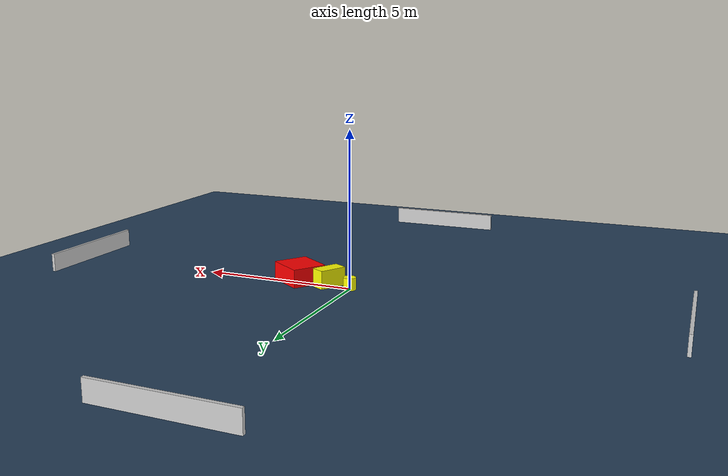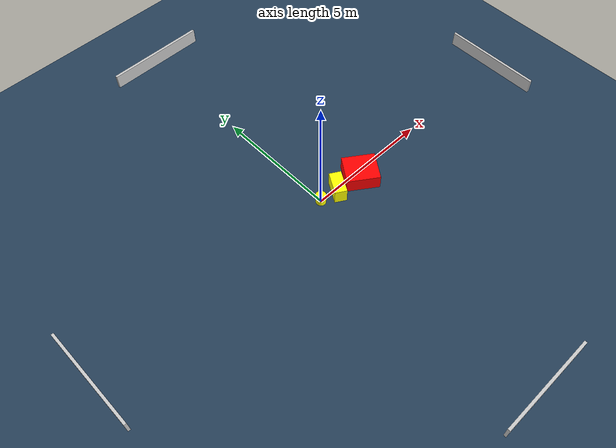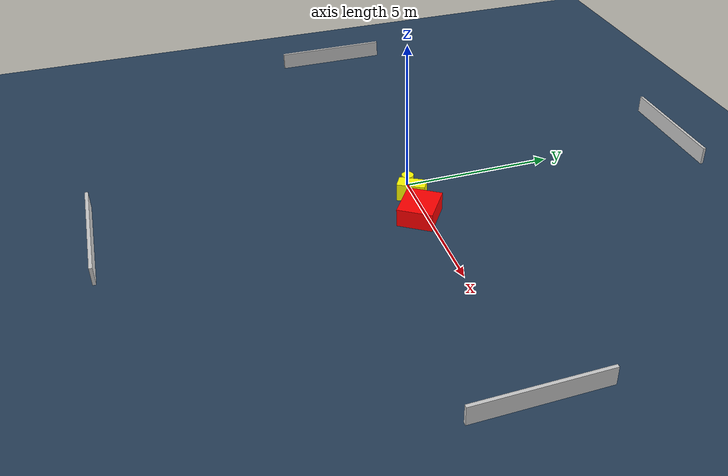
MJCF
<?xml version="1.0" ?>
<mujoco model="generated_environment">
  <option timestep="0.01" integrator="RK4" cone="elliptic"/>
  <default>
    <geom density="1"/>
  </default>
  <asset>
    <texture builtin="gradient" height="3072" name="skybox" rgb1="0.3 0.5 0.7" rgb2="0 0 0" type="skybox" width="512"/>
    <texture builtin="checker" height="300" name="groundplane" rgb1="0.2 0.3 0.4" rgb2="0.1 0.2 0.3" type="2d" width="300"/>
    <material name="groundplane" reflectance="0.2" texrepeat="5 5" texture="groundplane"/>
  </asset>
  <worldbody>
    <light dir="0 0 -1" directional="true" pos="0 0 1.5"/>
    <geom condim="3" friction="0.5 0.005 0.001" material="groundplane" name="floor" pos="0 0 0" size="0 0 0.05" type="plane"/>
    <body name="walls">
      <geom name="wall_1" condim="4" pos="-10.0 0.0 0.3" rgba="0.800000011920929 0.800000011920929 0.800000011920929 1.0" size="0.05 2.0 0.3" type="box"/>
      <geom name="wall_2" condim="4" pos="10.0 0.0 0.3" rgba="0.800000011920929 0.800000011920929 0.800000011920929 1.0" size="0.05 2.0 0.3" type="box"/>
      <geom name="wall_3" condim="4" pos="0.0 -10.0 0.3" rgba="0.800000011920929 0.800000011920929 0.800000011920929 1.0" size="2.0 0.05 0.3" type="box"/>
      <geom name="wall_4" condim="4" pos="0.0 10.0 0.3" rgba="0.800000011920929 0.800000011920929 0.800000011920929 1.0" size="2.0 0.05 0.3" type="box"/>
    </body>
    <body name="robot">
      <joint name="joint_x" type="slide" pos="0 0 0" axis="1 0 0"/>
      <joint name="joint_y" type="slide" pos="0 0 0" axis="0 1 0"/>
      <geom name="robot" type="cylinder" pos="0.0 0.0 0.2" size="0.2 0.2 0.0" mass="5.0" friction="1.0 0.005 0.0001" condim="4" rgba="1.0 1.0 0.0 1.0"/>
    </body>
    <body name="obstacle_1_movable">
      <geom name="obstacle_1_movable" condim="4" pos="0.7620902164125691 -0.1153965870665522 0.3" euler="0 0 329.7627299252055" friction="0.0 0.005 0.001" rgba="1.0 1.0 0.0 1.0" size="0.23696155294021243 0.45605389685603137 0.3" type="box" mass="0.1"/>
      <joint type="free"/>
    </body>
    <body name="obstacle_2_static">
      <geom name="obstacle_2_static" condim="4" pos="1.8488518758345014 -0.23094550525381838 0.3" euler="0 0 145.62558266923133" friction="0.0 0.005 0.001" rgba="1.0 0.0 0.0 1.0" size="0.6421420708906246 0.5694165502885943 0.3" type="box"/>
    </body>
  </worldbody>
  <actuator>
    <motor name="actuator_x" joint="joint_x" gear="1" ctrlrange="-1 1"/>
    <motor name="actuator_y" joint="joint_y" gear="1" ctrlrange="-1 1"/>
  </actuator>
</mujoco>
